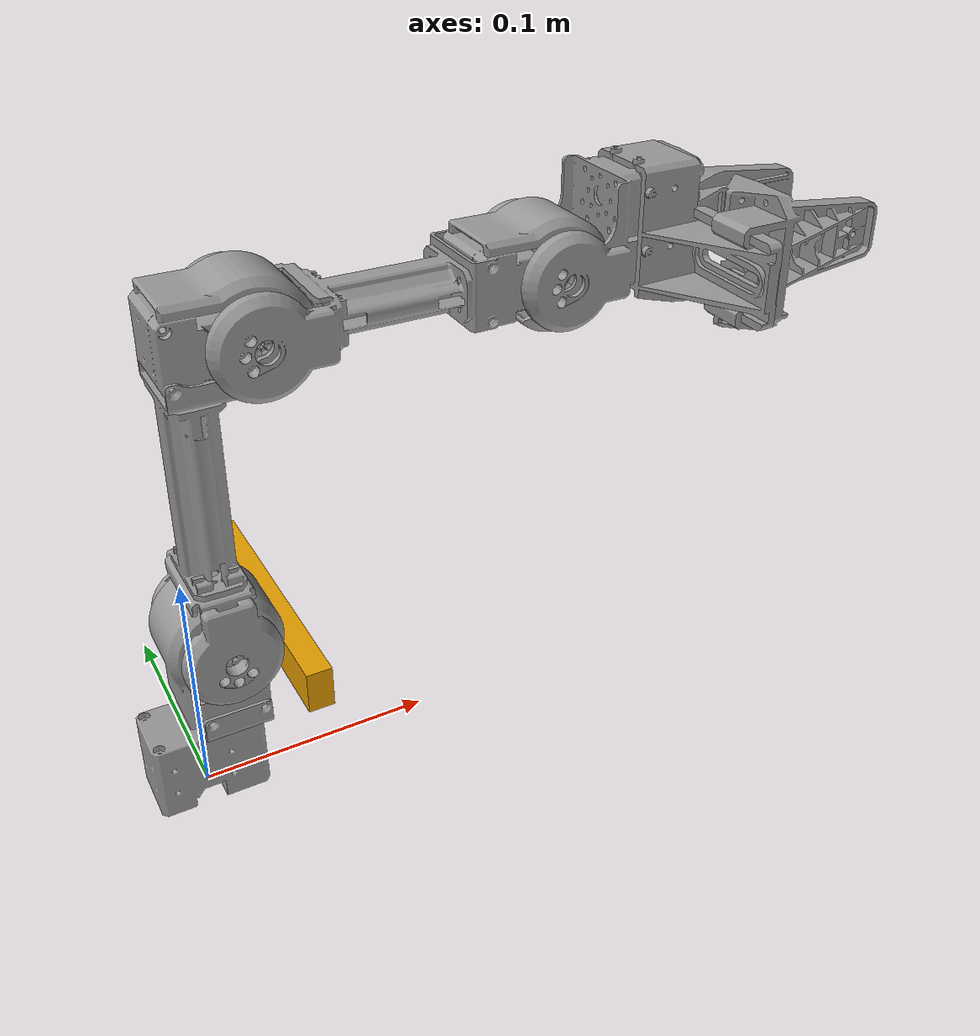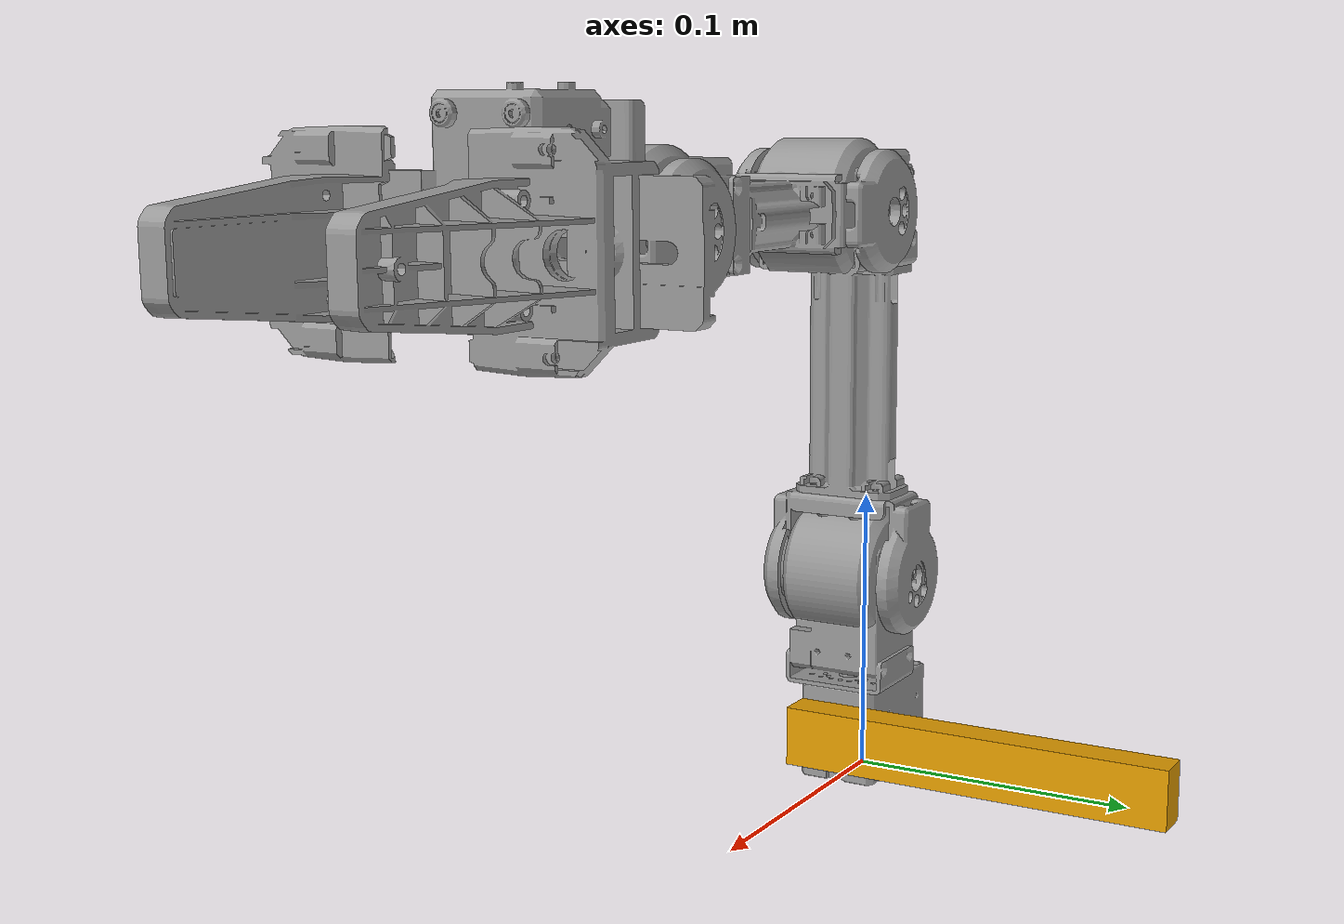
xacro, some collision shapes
<?xml version="1.0"?>
<!-- Open_Manipulator Chain -->
<robot name="open_manipulator" xmlns:xacro="http://ros.org/wiki/xacro">

  <xacro:property name="r200_cam_rgb_px" value="0.005"/>
  <xacro:property name="r200_cam_rgb_py" value="0.018"/>
  <xacro:property name="r200_cam_rgb_pz" value="0.013"/>
  <xacro:property name="r200_cam_depth_offset" value="0.01"/>

  <!-- Import all Gazebo-customization elements, including Gazebo colors -->
  <xacro:include filename="$(find open_manipulator_description)/urdf/open_manipulator_realsense.gazebo.xacro" />
  <!-- Import Rviz colors -->
  <xacro:include filename="$(find open_manipulator_description)/urdf/materials.xacro" />

  <!-- World -->
  <link name="world">
  </link>

  <!-- World fixed joint-->
  <joint name="world_fixed" type="fixed">
    <origin xyz="0 0 0" rpy="0 0 0"/>
    <parent link="world"/>
    <child link="link1"/>
  </joint>

  <!-- Link 1 -->
  <link name="link1">
    <visual>
      <origin xyz="0 0 0" rpy="0 0 0"/>
      <geometry>
        <mesh filename="package://open_manipulator_description/meshes/chain_link1.stl" scale="0.001 0.001 0.001"/>
      </geometry>
      <material name="grey"/>
    </visual>

    <collision>
      <origin xyz="0 0 0" rpy="0 0 0"/>
      <geometry>
        <mesh filename="package://open_manipulator_description/meshes/chain_link1.stl" scale="0.001 0.001 0.001"/>
      </geometry>
    </collision>

    <inertial>
      <origin xyz="0 0 0" />
      <mass value="0.082" />
      <inertia ixx="0.1" ixy="0.0" ixz="0.0"
               iyy="0.1" iyz="0.0"
               izz="0.1" />
    </inertial>

  </link>

  <!-- Joint 1 -->
  <joint name="joint1" type="revolute">
    <parent link="link1"/>
    <child link="link2"/>
    <origin xyz="0.012 0.0 0.017" rpy="0 0 0"/>
    <axis xyz="0 0 1"/>
    <limit velocity="6.5" effort="1000" lower="${-pi*0.9}" upper="${pi*0.9}" />
  </joint>

  <!-- Transmission 1 -->
  <transmission name="tran1">
    <type>transmission_interface/SimpleTransmission</type>
    <joint name="joint1">
      <hardwareInterface>hardware_interface/EffortJointInterface</hardwareInterface>
    </joint>
    <actuator name="motor1">
      <hardwareInterface>hardware_interface/EffortJointInterface</hardwareInterface>
      <mechanicalReduction>1</mechanicalReduction>
    </actuator>
  </transmission>

  <!--  Link 2 -->
  <link name="link2">
    <visual>
      <origin xyz="0 0 0.018" rpy="0 0 0"/>
      <geometry>
        <mesh filename="package://open_manipulator_description/meshes/chain_link2.stl" scale="0.001 0.001 0.001"/>
      </geometry>
      <material name="grey"/>
    </visual>

    <collision>
      <origin xyz="0 0 0.018" rpy="0 0 0"/>
      <geometry>
        <mesh filename="package://open_manipulator_description/meshes/chain_link2.stl" scale="0.001 0.001 0.001"/>
      </geometry>
    </collision>

    <inertial>
      <origin xyz="0 0 0" />
      <mass value="0.098" />
      <inertia ixx="0.1" ixy="0.0" ixz="0.0"
               iyy="0.1" iyz="0.0"
               izz="0.1" />
    </inertial>

  </link>

  <!--  Joint 2 -->
  <joint name="joint2" type="revolute">
    <parent link="link2"/>
    <child link="link3"/>
    <origin xyz="0.0 0.0 0.058" rpy="0 0 0"/>
    <axis xyz="0 1 0"/>
    <limit velocity="6.5" effort="1000" lower="${-pi*0.5}" upper="${pi*0.5}" />
  </joint>

  <!-- Transmission 2 -->
  <transmission name="tran2">
    <type>transmission_interface/SimpleTransmission</type>
    <joint name="joint2">
      <hardwareInterface>hardware_interface/EffortJointInterface</hardwareInterface>
    </joint>
    <actuator name="motor2">
      <hardwareInterface>hardware_interface/EffortJointInterface</hardwareInterface>
      <mechanicalReduction>1</mechanicalReduction>
    </actuator>
  </transmission>

  <!--  Link 3 -->
  <link name="link3">
    <visual>
      <origin xyz="0 0 0" rpy="0 0 0"/>
      <geometry>
        <mesh filename="package://open_manipulator_description/meshes/chain_link3.stl" scale="0.001 0.001 0.001"/>
      </geometry>
      <material name="grey"/>
    </visual>

    <collision>
      <origin xyz="0 0 0" rpy="0 0 0"/>
      <geometry>
        <mesh filename="package://open_manipulator_description/meshes/chain_link3.stl" scale="0.001 0.001 0.001"/>
      </geometry>
    </collision>

    <inertial>
      <origin xyz="0 0 0" />
      <mass value="0.136" />
      <inertia ixx="0.1" ixy="0.0" ixz="0.0"
               iyy="0.1" iyz="0.0"
               izz="0.1" />
    </inertial>

  </link>

  <!--  Joint 3 -->
  <joint name="joint3" type="revolute">
    <parent link="link3"/>
    <child link="link4"/>
    <origin xyz="0.024 0 0.128" rpy="0 0 0"/>
    <axis xyz="0 1 0"/>
    <limit velocity="6.5" effort="1000" lower="${-pi*0.3}" upper="${pi*0.44}" />
  </joint>

  <!-- Transmission 3 -->
  <transmission name="tran3">
    <type>transmission_interface/SimpleTransmission</type>
    <joint name="joint3">
      <hardwareInterface>hardware_interface/EffortJointInterface</hardwareInterface>
    </joint>
    <actuator name="motor3">
      <hardwareInterface>hardware_interface/EffortJointInterface</hardwareInterface>
      <mechanicalReduction>1</mechanicalReduction>
    </actuator>
  </transmission>

  <!--  Link 4 -->
  <link name="link4">
    <visual>
      <origin xyz="0 0 0" rpy="0 0 0"/>
      <geometry>
        <mesh filename="package://open_manipulator_description/meshes/chain_link4.stl" scale="0.001 0.001 0.001"/>
      </geometry>
      <material name="grey"/>
    </visual>

    <collision>
      <origin xyz="0 0 0" rpy="0 0 0"/>
      <geometry>
        <mesh filename="package://open_manipulator_description/meshes/chain_link4.stl" scale="0.001 0.001 0.001"/>
      </geometry>
    </collision>

    <inertial>
      <origin xyz="0 0 0" />
      <mass value="0.131" />
      <inertia ixx="0.1" ixy="0.0" ixz="0.0"
               iyy="0.1" iyz="0.0"
               izz="0.1" />
    </inertial>

  </link>

  <!--  Joint 4 -->
  <joint name="joint4" type="revolute">
    <parent link="link4"/>
    <child link="link5"/>
    <origin xyz="0.124 0.0 0.0" rpy="0 0 0"/>
    <axis xyz="0 1 0"/>
    <limit velocity="6.5" effort="1000" lower="${-pi*0.4}" upper="${pi*0.5}" />
  </joint>

  <!-- Transmission 4 -->
  <transmission name="tran4">
    <type>transmission_interface/SimpleTransmission</type>
    <joint name="joint4">
      <hardwareInterface>hardware_interface/EffortJointInterface</hardwareInterface>
    </joint>
    <actuator name="motor4">
      <hardwareInterface>hardware_interface/EffortJointInterface</hardwareInterface>
      <mechanicalReduction>1</mechanicalReduction>
    </actuator>
  </transmission>

  <!--  Link 5 -->
  <link name="link5">
    <visual>
      <origin xyz="0 0 0" rpy="0 0 0"/>
      <geometry>
        <mesh filename="package://open_manipulator_description/meshes/chain_link5.stl" scale="0.001 0.001 0.001"/>
      </geometry>
      <material name="grey"/>
    </visual>

    <collision>
      <origin xyz="0 0 0" rpy="0 0 0"/>
      <geometry>
        <mesh filename="package://open_manipulator_description/meshes/chain_link5.stl" scale="0.001 0.001 0.001"/>
      </geometry>
    </collision>

    <inertial>
      <origin xyz="0 0 0" />
      <mass value="0.141" />
      <inertia ixx="0.1" ixy="0.0" ixz="0.0"
               iyy="0.1" iyz="0.0"
               izz="0.1" />
    </inertial>

  </link>

  <!--  Grip link -->
  <link name="grip_link">
    <visual>
      <origin xyz="0.028 0.0246 0" rpy="0 0 0"/>
      <geometry>
        <mesh filename="package://open_manipulator_description/meshes/chain_link_grip_l.stl" scale="0.001 0.001 0.001"/>
      </geometry>
      <material name="grey"/>
    </visual>

    <collision>
      <origin xyz="0.028 0.0246 0" rpy="0 0 0"/>
      <geometry>
        <mesh filename="package://open_manipulator_description/meshes/chain_link_grip_l.stl" scale="0.001 0.001 0.001"/>
      </geometry>
    </collision>

    <inertial>
      <origin xyz="0 0 0" />
      <mass value="0.017" />
      <inertia ixx="0.1" ixy="0.0" ixz="0.0"
               iyy="0.1" iyz="0.0"
               izz="0.1" />
    </inertial>

  </link>

  <!--  Grip joint -->
  <joint name="grip_joint" type="prismatic">
    <parent link="link5"/>
    <child link="grip_link"/>
    <origin xyz="0.0536 0.0 0.0" rpy="0 0 0"/>
    <axis xyz="0 -1 0"/>
    <limit velocity="3.5" effort="100" lower="-0.015" upper="0.0105" />
  </joint>

  <!-- Transmission 5 -->
  <transmission name="tran5">
    <type>transmission_interface/SimpleTransmission</type>
    <joint name="grip_joint">
      <hardwareInterface>hardware_interface/EffortJointInterface</hardwareInterface>
    </joint>
    <actuator name="motor7">
      <hardwareInterface>hardware_interface/EffortJointInterface</hardwareInterface>
      <mechanicalReduction>1</mechanicalReduction>
    </actuator>
  </transmission>

  <!--  Grip link sub -->
  <link name="grip_link_sub">
    <visual>
      <origin xyz="0.028 -0.0246 0" rpy="0 0 0"/>
      <geometry>
        <mesh filename="package://open_manipulator_description/meshes/chain_link_grip_r.stl" scale="0.001 0.001 0.001"/>
      </geometry>
      <material name="grey"/>
    </visual>

    <collision>
      <origin xyz="0.028 -0.0246 0" rpy="0 0 0"/>
      <geometry>
        <mesh filename="package://open_manipulator_description/meshes/chain_link_grip_r.stl" scale="0.001 0.001 0.001"/>
      </geometry>
    </collision>

    <inertial>
      <origin xyz="0 0 0" />
      <mass value="0.017" />
      <inertia ixx="0.1" ixy="0.0" ixz="0.0"
               iyy="0.1" iyz="0.0"
               izz="0.1" />
    </inertial>

  </link>

  <!--  Grip joint sub -->
  <joint name="grip_joint_sub" type="prismatic">
    <parent link="link5"/>
    <child link="grip_link_sub"/>
    <origin xyz="0.0536 0 0" rpy="0 0 0"/>
    <axis xyz="0 1 0"/>
    <limit velocity="3.5" effort="100" lower="-0.015" upper="0.0105" />
  </joint>

  <!-- Transmission 6 -->
  <transmission name="tran6">
    <type>transmission_interface/SimpleTransmission</type>
    <joint name="grip_joint_sub">
      <hardwareInterface>hardware_interface/EffortJointInterface</hardwareInterface>
    </joint>
    <actuator name="motor8">
      <hardwareInterface>hardware_interface/EffortJointInterface</hardwareInterface>
      <mechanicalReduction>1</mechanicalReduction>
    </actuator>
  </transmission>

<!-- addition start -->

  <joint name="camera_joint" type="fixed">
    <origin xyz="0.05 0.0 0.02" rpy="0 0 0"/>
    <parent link="world"/>
    <child link="camera_link"/>
  </joint>

  <link name="camera_link">
    <visual>
     <origin xyz="0 0 0" rpy="1.57 0 1.57"/>
      <geometry>
       <mesh filename="package://turtlebot3_description/meshes/sensors/r200.dae" />
      </geometry>
    </visual>
    <collision>
      <origin xyz="0.003 0.065 0.007" rpy="0 0 0"/>
      <geometry>
        <box size="0.012 0.132 0.020"/>
      </geometry>
    </collision>

    <inertial>
      <origin xyz="0 0 0" />
      <mass value="0.082" />
      <inertia ixx="0.1" ixy="0.0" ixz="0.0"
               iyy="0.1" iyz="0.0"
               izz="0.1" />
    </inertial>

  </link>

  <joint name="camera_rgb_joint" type="fixed">
    <origin xyz="${r200_cam_rgb_px} ${r200_cam_rgb_py} ${r200_cam_rgb_pz}" rpy="0 0 0"/>
    <parent link="camera_link"/>
    <child link="camera_rgb_frame"/>
  </joint>
  <link name="camera_rgb_frame"/>

  <joint name="camera_rgb_optical_joint" type="fixed">
    <origin xyz="0 0 0" rpy="-1.57 0 -1.57"/>
    <parent link="camera_rgb_frame"/>
    <child link="camera_rgb_optical_frame"/>
  </joint>
  <link name="camera_rgb_optical_frame"/>

  <joint name="camera_depth_joint" type="fixed">
    <origin xyz="${r200_cam_rgb_px} ${r200_cam_rgb_py + r200_cam_depth_offset} ${r200_cam_rgb_pz}" rpy="0 0 0"/>
    <parent link="camera_link"/>
    <child link="camera_depth_frame"/>
  </joint>
  <link name="camera_depth_frame"/>

  <joint name="camera_depth_optical_joint" type="fixed">
    <origin xyz="0 0 0" rpy="-1.57 0 -1.57"/>
    <parent link="camera_depth_frame"/>
    <child link="camera_depth_optical_frame"/>
  </joint>
  <link name="camera_depth_optical_frame"/>

</robot>
